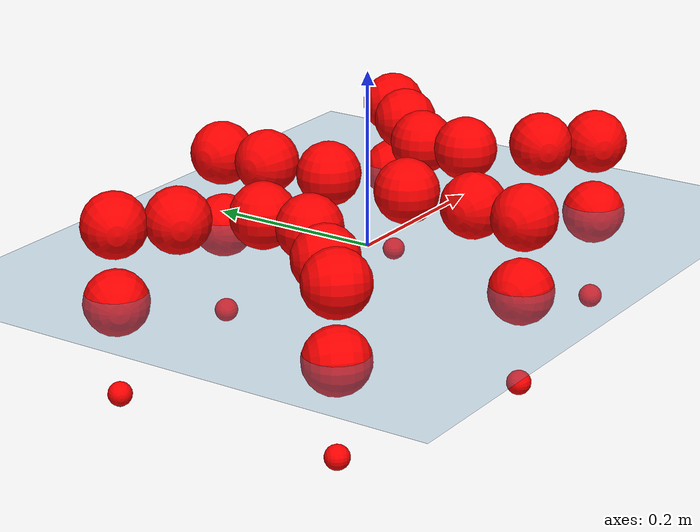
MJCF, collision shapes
<mujoco model="Golem">
  <compiler angle="radian" assetdir="assets" balanceinertia="true" inertiafromgeom="false"/>

  <option timestep="0.005" density="1.2" viscosity="2e-05"/>

  <size nkey="1"/>

  <visual>
    <quality shadowsize="8192"/>
    <map shadowclip="0.5"/>
  </visual>

  <default>
    <default class="/">
      <joint armature="0.01" damping="0.01" frictionloss="0.01"/>
      <geom contype="0" conaffinity="0" group="1" solref="-1000 -80"/>
      <site size="0.01 0.005 0.005" group="5"/>
      <general forcelimited="true" biastype="affine" gainprm="25" biasprm="0 -25 -0.5"/>
      <default class="visual">
        <geom type="mesh" group="2"/>
      </default>
      <default class="collision">
        <geom group="3"/>
      </default>
      <default class="foot">
        <geom size="0.01 0 0" condim="6" group="4" priority="1" solimp="0.015 1 0.01"/>
      </default>
      <default class="reward_collision_sphere">
        <geom group="5" rgba="1 0 0 1"/>
      </default>
    </default>
  </default>

  <asset>
    <texture type="skybox" colorspace="auto" name="//unnamed_texture_0" builtin="gradient" rgb1="0.95 0.95 0.95" rgb2="0.95 0.95 0.95" width="100" height="600"/>
    <texture type="2d" colorspace="auto" name="texplane" builtin="checker" rgb1="0.345 0.575 0.748" rgb2="0.345 0.575 0.748" markrgb="1 1 1" width="512" height="512"/>
    <material name="MatPlane" class="/" texture="texplane" texuniform="true" texrepeat="2 2" specular="0.9"/>
    <mesh name="body" class="/" file="body.stl" scale="0.001 0.001 0.001"/>
    <mesh name="coxa" class="/" file="coxa.stl" scale="0.001 0.001 0.001"/>
    <mesh name="femur" class="/" file="femur.stl" scale="0.001 0.001 0.001"/>
    <mesh name="tibia" class="/" file="tibia.stl" scale="0.001 0.001 0.001"/>
    <mesh name="tarsus" class="/" file="tarsus.stl" scale="0.001 0.001 0.001"/>
  </asset>

  <worldbody>
    <geom name="floor" class="/" size="100 100 0.125" type="plane" group="0" material="MatPlane"/>
    <light name="toplight_shadow" class="/" pos="0 0 5" dir="0.0990148 0.0990148 -0.990148" type="directional" ambient="0.04 0.04 0.04" diffuse="0.55 0.55 0.55" specular="0.12 0.12 0.12"/>
    <light name="toplight_fill" class="/" pos="0 0 5" dir="0.0990148 0.0990148 -0.990148" type="directional" castshadow="false" ambient="0.04 0.04 0.04" diffuse="0.3 0.3 0.3" specular="0.08 0.08 0.08"/>
    <body name="trunk" pos="-4.30672e-05 -0.000147156 0.000735789" quat="1 0.000368144 5.50182e-05 -1.80385e-05">
      <inertial pos="0.00124188 -0.00141458 -0.00103969" quat="0.999997 -0.00169228 0.000834869 -0.00134643" mass="2.84994" diaginertia="0.00954363 0.000801762 0.0199593"/>
      <joint name="//unnamed_joint_0" type="free"/>
      <geom name="//unnamed_geom_1" class="/" pos="0 0 0.0729856" quat="1 0 0 0" type="mesh" rgba="0.9 0.9 0.9 1" mesh="body"/>
      <site name="imu" class="/" pos="0.130148 0.000621482 0.104075" size="0.00906776"/>
      <camera name="track" class="/" pos="0 -1.19956 0" quat="0.707107 0.707107 0 0" mode="trackcom"/>
      <camera name="ego_camera" class="/" pos="0.127419 0 0.11404" quat="-0.5 -0.5 0.5 0.5"/>
      <body name="coxa_RR" pos="-0.174718 -0.0509604 0.0742263" quat="0.382671 -7.61089e-08 5.63976e-06 -0.923885">
        <inertial pos="-0.000510267 0.000419246 0.000486524" quat="0.999999 -1.94763e-05 0.000796231 -0.000896209" mass="0.14882" diaginertia="0.00908987 0.0007851 0.019139"/>
        <joint name="coxa_joint_RR" class="/" pos="0 0 0" axis="0.0027656 0.00821196 -0.999962" range="-3.14281 3.13686" armature="0.0090635" damping="0" frictionloss="0.00903909"/>
        <geom name="//unnamed_geom_2" class="/" type="mesh" rgba="0.2 0.2 0.2 1" mesh="coxa"/>
        <geom name="//unnamed_geom_3" class="reward_collision_sphere" size="0.0362711" pos="-0.0294045 0 0"/>
        <body name="femur_RR" pos="0.0601308 0.000173169 -0.000412391" quat="0.499865 -0.500005 0.500053 0.500077">
          <inertial pos="-0.000759862 -0.000359814 0.000292497" quat="1 -0.000103837 0.000404235 0.000200676" mass="0.146742" diaginertia="0.00909573 0.000758664 0.018788"/>
          <joint name="femur_joint_RR" class="/" pos="0 0 0" axis="-0.000764684 0.00999713 -0.99995" range="-3.14127 3.11832" armature="0.00907828" damping="0" frictionloss="0.00868181"/>
          <geom name="//unnamed_geom_4" class="/" type="mesh" rgba="0.9 0.9 0.9 1" mesh="femur"/>
          <geom name="//unnamed_geom_5" class="reward_collision_sphere" size="0.0362711"/>
          <body name="tibia_RR" pos="0.000454525 -0.0660499 -0.00144404" quat="-4.26983e-05 1 3.12316e-05 2.47282e-05">
            <inertial pos="-0.000444107 -0.00196571 0.00032965" quat="0.99994 -0.0102013 -0.00292549 0.00271249" mass="0.149341" diaginertia="0.00921399 0.000778746 0.0191456"/>
            <joint name="tibia_joint_RR" class="/" pos="0 0 0" axis="-0.00281386 -0.000670738 0.999996" range="-3.13382 3.15379" armature="0.00918902" damping="0" frictionloss="0.00952522"/>
            <geom name="//unnamed_geom_6" class="/" type="mesh" rgba="0.2 0.2 0.2 1" mesh="tibia"/>
            <geom name="//unnamed_geom_7" class="reward_collision_sphere" size="0.0362711"/>
            <body name="tarsus_RR" pos="0.0834684 -0.00211783 -0.00033168" quat="1 -0.000157818 8.8918e-05 3.4687e-05">
              <inertial pos="0.0588936 0.00077835 -0.000392224" quat="0.493753 0.498687 0.501382 0.506098" mass="0.152224" diaginertia="0.0091452 0.000780198 0.0190372"/>
              <joint name="tarsus_joint_RR" class="/" pos="0 0 0" axis="0.000537998 -9.21092e-05 1" range="-3.14466 3.13957" armature="0.00948755" damping="0.0040506" frictionloss="0.00954286"/>
              <geom name="//unnamed_geom_8" class="/" type="mesh" rgba="0.9 0.9 0.9 1" mesh="tarsus"/>
              <geom name="foot_1" class="foot" size="0.00880648" pos="0.109777 0 0" quat="0 -0.707107 0 0.707107"/>
              <geom name="//unnamed_geom_10" class="reward_collision_sphere" size="0.0362711"/>
              <geom name="//unnamed_geom_11" class="reward_collision_sphere" size="0.0136016" pos="0.105366 0 0"/>
              <site name="foot_1" class="foot" pos="0.109777 0 0" quat="0 -0.707107 0 0.707107" size="0.00906776"/>
            </body>
          </body>
        </body>
      </body>
      <body name="coxa_RM" pos="-0.000686639 -0.0803308 0.0736399" quat="0.706432 -0.000441108 -0.000108845 -0.707781">
        <inertial pos="0.000762091 -0.000226329 -0.00106307" quat="1 -0.000424459 -0.000298115 0.000227827" mass="0.150991" diaginertia="0.0091212 0.000789592 0.0191976"/>
        <joint name="coxa_joint_RM" class="/" pos="0 0 0" axis="-7.29641e-05 -0.000285581 -1" range="-3.12839 3.14037" armature="0.00938515" damping="0.0143097" frictionloss="0.00860557"/>
        <geom name="//unnamed_geom_12" class="/" type="mesh" rgba="0.2 0.2 0.2 1" mesh="coxa"/>
        <geom name="//unnamed_geom_13" class="reward_collision_sphere" size="0.0362711" pos="-0.0294045 0 0"/>
        <body name="femur_RM" pos="0.0562118 -0.0023419 0.000969338" quat="0.499939 -0.5 0.500056 0.500005">
          <inertial pos="0.00208448 -0.000168689 -0.000367619" quat="0.999987 -0.00434907 0.00269759 3.26533e-05" mass="0.145556" diaginertia="0.00863643 0.000759932 0.0183356"/>
          <joint name="femur_joint_RM" class="/" pos="0 0 0" axis="-0.000530954 0.0021154 -0.999998" range="-3.14262 3.10058" armature="0.00870337" damping="0.0102463" frictionloss="0.00926657"/>
          <geom name="//unnamed_geom_14" class="/" type="mesh" rgba="0.9 0.9 0.9 1" mesh="femur"/>
          <geom name="//unnamed_geom_15" class="reward_collision_sphere" size="0.0362711"/>
          <body name="tibia_RM" pos="0.000497439 -0.0629535 -0.000558843" quat="1.77707e-05 1 1.58767e-05 -5.02041e-05">
            <inertial pos="6.19111e-05 0.00250254 0.000634375" quat="1 0.00045933 0.000492228 -0.000163175" mass="0.149011" diaginertia="0.00906383 0.000777116 0.0192658"/>
            <joint name="tibia_joint_RM" class="/" pos="0 0 0" axis="3.17073e-05 0.00058257 1" range="-3.1363 3.14025" armature="0.00950977" damping="0.0177849" frictionloss="0.00908851"/>
            <geom name="//unnamed_geom_16" class="/" type="mesh" rgba="0.2 0.2 0.2 1" mesh="tibia"/>
            <geom name="//unnamed_geom_17" class="reward_collision_sphere" size="0.0362711"/>
            <body name="tarsus_RM" pos="0.0836979 -0.00132436 0.000781049" quat="1 1.68045e-05 -3.17726e-05 -4.17243e-06">
              <inertial pos="0.0603417 -0.000213803 -0.000754335" quat="0.500245 0.50028 0.499292 0.500183" mass="0.153677" diaginertia="0.00903885 0.000779182 0.0198331"/>
              <joint name="tarsus_joint_RM" class="/" pos="0 0 0" axis="-0.00521274 -8.085e-05 0.999986" stiffness="0.00192838" range="-3.158 3.1126" armature="0.00901248" damping="0.00806346" frictionloss="0.0086448"/>
              <geom name="//unnamed_geom_18" class="/" type="mesh" rgba="0.9 0.9 0.9 1" mesh="tarsus"/>
              <geom name="foot_2" class="foot" size="0.00919724" pos="0.109777 0 0" quat="0 -0.707107 0 0.707107"/>
              <geom name="//unnamed_geom_20" class="reward_collision_sphere" size="0.0362711"/>
              <geom name="//unnamed_geom_21" class="reward_collision_sphere" size="0.0136016" pos="0.105366 0 0"/>
              <site name="foot_2" class="foot" pos="0.109777 0 0" quat="0 -0.707107 0 0.707107" size="0.00906776"/>
            </body>
          </body>
        </body>
      </body>
      <body name="coxa_RF" pos="0.175748 -0.0512179 0.0751358" quat="0.923795 -2.64496e-05 0.000339431 -0.382887">
        <inertial pos="0.000773466 -0.0020392 0.00116407" quat="0.999954 0.000996463 -0.00946935 -0.000872436" mass="0.145929" diaginertia="0.00909664 0.000770951 0.0191262"/>
        <joint name="coxa_joint_RF" class="/" pos="0 0 0" axis="0.0011929 0.00220336 -0.999997" range="-3.09717 3.1275" armature="0.00848135" damping="0" frictionloss="0.00911607"/>
        <geom name="//unnamed_geom_22" class="/" type="mesh" rgba="0.2 0.2 0.2 1" mesh="coxa"/>
        <geom name="//unnamed_geom_23" class="reward_collision_sphere" size="0.0362711" pos="-0.0294045 0 0"/>
        <body name="femur_RF" pos="0.0594623 0.000899962 -0.000577254" quat="0.499943 -0.500049 0.500011 0.499997">
          <inertial pos="-0.000601723 0.00180937 0.000318199" quat="0.999989 -0.0028341 0.00324965 -0.00169195" mass="0.14968" diaginertia="0.00938535 0.000794445 0.0200703"/>
          <joint name="femur_joint_RF" class="/" pos="0 0 0" axis="0.000949137 -0.0013858 -0.999999" range="-3.14955 3.1518" armature="0.0090969" damping="0.00919267" frictionloss="0.00938508"/>
          <geom name="//unnamed_geom_24" class="/" type="mesh" rgba="0.9 0.9 0.9 1" mesh="femur"/>
          <geom name="//unnamed_geom_25" class="reward_collision_sphere" size="0.0362711"/>
          <body name="tibia_RF" pos="0.000778711 -0.064935 -0.00061123" quat="-2.19015e-05 1 0.000154259 -9.66465e-05">
            <inertial pos="0.000325902 0.000318543 -0.00232845" quat="0.99997 0.00471109 -0.00583132 0.00208824" mass="0.151921" diaginertia="0.0092391 0.000767337 0.0197842"/>
            <joint name="tibia_joint_RF" class="/" pos="0 0 0" axis="0.00548352 -0.0012784 0.999984" stiffness="0.00102172" range="-3.13869 3.12956" armature="0.0088968" damping="0.0126729" frictionloss="0.00891898"/>
            <geom name="//unnamed_geom_26" class="/" type="mesh" rgba="0.2 0.2 0.2 1" mesh="tibia"/>
            <geom name="//unnamed_geom_27" class="reward_collision_sphere" size="0.0362711"/>
            <body name="tarsus_RF" pos="0.0866617 0.0012373 -0.00116187" quat="1 0.000120447 0.000290269 0.000307681">
              <inertial pos="0.059421 -0.000282844 -0.000836305" quat="0.499944 0.499985 0.500097 0.499974" mass="0.149057" diaginertia="0.00914148 0.000757835 0.0187223"/>
              <joint name="tarsus_joint_RF" class="/" pos="0 0 0" axis="-0.0013316 0.000316302 0.999999" stiffness="0.023771" range="-3.11969 3.13671" armature="0.00878886" damping="0" frictionloss="0.00898089"/>
              <geom name="//unnamed_geom_28" class="/" type="mesh" rgba="0.9 0.9 0.9 1" mesh="tarsus"/>
              <geom name="foot_3" class="foot" size="0.00936132" pos="0.109777 0 0" quat="0 -0.707107 0 0.707107"/>
              <geom name="//unnamed_geom_30" class="reward_collision_sphere" size="0.0362711"/>
              <geom name="//unnamed_geom_31" class="reward_collision_sphere" size="0.0136016" pos="0.105366 0 0"/>
              <site name="foot_3" class="foot" pos="0.109777 0 0" quat="0 -0.707107 0 0.707107" size="0.00906776"/>
            </body>
          </body>
        </body>
      </body>
      <body name="coxa_LR" pos="-0.172781 0.0517562 0.074895" quat="0.382439 0.000149705 -0.000195211 0.923981">
        <inertial pos="-0.000423682 -0.00143364 -0.000143633" quat="0.999991 0.00274109 -0.00333984 -0.000422187" mass="0.147769" diaginertia="0.00923598 0.000763215 0.0185681"/>
        <joint name="coxa_joint_LR" class="/" pos="0 0 0" axis="-0.000292946 -0.00273219 -0.999996" range="-3.13249 3.12262" armature="0.00862577" damping="0.0119799" frictionloss="0.00925798"/>
        <geom name="//unnamed_geom_32" class="/" type="mesh" rgba="0.2 0.2 0.2 1" mesh="coxa"/>
        <geom name="//unnamed_geom_33" class="reward_collision_sphere" size="0.0362711" pos="-0.0294045 0 0"/>
        <body name="femur_LR" pos="0.0600382 -0.00314944 -0.000149625" quat="0.500228 -0.500488 0.499586 0.499698">
          <inertial pos="0.000263132 -0.00258223 2.19128e-05" quat="1 -0.000465048 -0.000123529 0.000204371" mass="0.149907" diaginertia="0.00882137 0.000781846 0.0187757"/>
          <joint name="femur_joint_LR" class="/" pos="0 0 0" axis="-0.0016555 -0.00148501 0.999998" stiffness="0.000149407" range="-3.10519 3.13376" armature="0.00886272" damping="0" frictionloss="0.0091029"/>
          <geom name="//unnamed_geom_34" class="/" type="mesh" rgba="0.9 0.9 0.9 1" mesh="femur"/>
          <geom name="//unnamed_geom_35" class="reward_collision_sphere" size="0.0362711"/>
          <body name="tibia_LR" pos="0.00217382 -0.066303 -0.00368313" quat="-7.16457e-05 1 -0.000119404 -0.000104866">
            <inertial pos="-0.000503172 -0.00107333 0.000812774" quat="0.999969 0.00350504 -0.0058794 0.00376839" mass="0.148636" diaginertia="0.0088521 0.00077227 0.0191391"/>
            <joint name="tibia_joint_LR" class="/" pos="0 0 0" axis="0.00328683 -0.000108286 -0.999995" range="-3.14746 3.17603" armature="0.00860786" damping="0" frictionloss="0.00911489"/>
            <geom name="//unnamed_geom_36" class="/" type="mesh" rgba="0.2 0.2 0.2 1" mesh="tibia"/>
            <geom name="//unnamed_geom_37" class="reward_collision_sphere" size="0.0362711"/>
            <body name="tarsus_LR" pos="0.0864019 0.000642931 -0.0013692" quat="1 -5.89066e-05 0.000207155 -0.000157076">
              <inertial pos="0.061555 -0.00177734 -0.00159025" quat="0.498806 0.502515 0.501996 0.49666" mass="0.148817" diaginertia="0.00891352 0.0007789 0.0188168"/>
              <joint name="tarsus_joint_LR" class="/" pos="0 0 0" axis="0.00219371 -0.0123367 -0.999921" range="-3.12032 3.14134" armature="0.00876433" damping="0" frictionloss="0.00913381"/>
              <geom name="//unnamed_geom_38" class="/" type="mesh" rgba="0.9 0.9 0.9 1" mesh="tarsus"/>
              <geom name="foot_4" class="foot" size="0.0098835" pos="0.109777 0 0" quat="0.707107 0 -0.707107 0"/>
              <geom name="//unnamed_geom_40" class="reward_collision_sphere" size="0.0362711"/>
              <geom name="//unnamed_geom_41" class="reward_collision_sphere" size="0.0136016" pos="0.105366 0 0"/>
              <site name="foot_4" class="foot" pos="0.109777 0 0" quat="0.707107 0 -0.707107 0" size="0.00906776"/>
            </body>
          </body>
        </body>
      </body>
      <body name="coxa_LM" pos="-0.00322953 0.0791192 0.0748903" quat="0.70732 -9.93753e-05 -6.19713e-05 0.706894">
        <inertial pos="0.00117885 -0.000650974 -0.000741433" quat="0.999968 0.00282815 0.00163617 -0.00732991" mass="0.151083" diaginertia="0.00918807 0.000799709 0.0198912"/>
        <joint name="coxa_joint_LM" class="/" pos="0 0 0" axis="-0.0119932 0.00296248 -0.999924" range="-3.13852 3.12592" armature="0.0086179" damping="0.00450551" frictionloss="0.00903995"/>
        <geom name="//unnamed_geom_42" class="/" type="mesh" rgba="0.2 0.2 0.2 1" mesh="coxa"/>
        <geom name="//unnamed_geom_43" class="reward_collision_sphere" size="0.0362711" pos="-0.0294045 0 0"/>
        <body name="femur_LM" pos="0.0530435 0.00240477 -0.000658861" quat="0.499998 -0.499991 0.50001 0.500001">
          <inertial pos="0.000416544 7.74245e-06 0.000916526" quat="0.999991 -0.000719411 -0.00202127 0.00367042" mass="0.149118" diaginertia="0.00893941 0.000806225 0.0197451"/>
          <joint name="femur_joint_LM" class="/" pos="0 0 0" axis="0.00199028 -0.000910013 0.999998" range="-3.15799 3.15038" armature="0.00912416" damping="0" frictionloss="0.00887262"/>
          <geom name="//unnamed_geom_44" class="/" type="mesh" rgba="0.9 0.9 0.9 1" mesh="femur"/>
          <geom name="//unnamed_geom_45" class="reward_collision_sphere" size="0.0362711"/>
          <body name="tibia_LM" pos="0.000514284 -0.0610631 0.00187974" quat="-0.000124979 1 -7.8365e-05 -0.000598794">
            <inertial pos="-0.000123883 -0.000939914 -0.00152356" quat="0.999961 0.00380096 0.00765322 0.00228011" mass="0.148137" diaginertia="0.00900769 0.000797074 0.0194665"/>
            <joint name="tibia_joint_LM" class="/" pos="0 0 0" axis="-0.000104601 -0.000117056 -1" range="-3.13892 3.14001" armature="0.00907015" damping="0.000137445" frictionloss="0.00854238"/>
            <geom name="//unnamed_geom_46" class="/" type="mesh" rgba="0.2 0.2 0.2 1" mesh="tibia"/>
            <geom name="//unnamed_geom_47" class="reward_collision_sphere" size="0.0362711"/>
            <body name="tarsus_LM" pos="0.0869483 -0.000727841 -0.000596676" quat="1 -0.000202484 4.56238e-05 -0.000617384">
              <inertial pos="0.0592585 -0.000536989 -0.000429077" quat="0.504459 0.503955 0.498051 0.493452" mass="0.151161" diaginertia="0.00925349 0.000780904 0.0191724"/>
              <joint name="tarsus_joint_LM" class="/" pos="0 0 0" axis="-0.00614842 0.00655444 -0.99996" range="-3.128 3.12801" armature="0.00889572" damping="0" frictionloss="0.009858"/>
              <geom name="//unnamed_geom_48" class="/" type="mesh" rgba="0.9 0.9 0.9 1" mesh="tarsus"/>
              <geom name="foot_5" class="foot" size="0.0089806" pos="0.109777 0 0" quat="0.707107 0 -0.707107 0"/>
              <geom name="//unnamed_geom_50" class="reward_collision_sphere" size="0.0362711"/>
              <geom name="//unnamed_geom_51" class="reward_collision_sphere" size="0.0136016" pos="0.105366 0 0"/>
              <site name="foot_5" class="foot" pos="0.109777 0 0" quat="0.707107 0 -0.707107 0" size="0.00906776"/>
            </body>
          </body>
        </body>
      </body>
      <body name="coxa_LF" pos="0.176069 0.0493027 0.0723246" quat="0.923911 -5.81186e-05 6.63467e-05 0.382608">
        <inertial pos="-0.000254214 7.86598e-05 0.00165079" quat="0.999992 -0.00364751 3.66428e-06 -0.00134347" mass="0.148548" diaginertia="0.00881407 0.000791822 0.0191729"/>
        <joint name="coxa_joint_LF" class="/" pos="0 0 0" axis="-0.00872674 0.00690979 -0.999938" range="-3.13926 3.13491" armature="0.00852315" damping="0.00334204" frictionloss="0.0101532"/>
        <geom name="//unnamed_geom_52" class="/" type="mesh" rgba="0.2 0.2 0.2 1" mesh="coxa"/>
        <geom name="//unnamed_geom_53" class="reward_collision_sphere" size="0.0362711" pos="-0.0294045 0 0"/>
        <body name="femur_LF" pos="0.0584359 0.00060348 0.000386766" quat="0.500001 -0.49997 0.500025 0.500003">
          <inertial pos="-0.00238563 0.00069531 0.00238337" quat="0.999996 0.000806714 -0.00252863 0.000369674" mass="0.151004" diaginertia="0.00928844 0.00078274 0.0193491"/>
          <joint name="femur_joint_LF" class="/" pos="0 0 0" axis="0.00417185 0.000142008 0.999991" range="-3.13531 3.13103" armature="0.00908572" damping="0" frictionloss="0.00876195"/>
          <geom name="//unnamed_geom_54" class="/" type="mesh" rgba="0.9 0.9 0.9 1" mesh="femur"/>
          <geom name="//unnamed_geom_55" class="reward_collision_sphere" size="0.0362711"/>
          <body name="tibia_LF" pos="-0.000635527 -0.0641633 0.000823994" quat="9.34479e-05 1 -8.14869e-05 -5.5899e-05">
            <inertial pos="0.000874206 -0.00219827 -0.000480651" quat="1 -0.000270472 6.9281e-05 6.62595e-05" mass="0.142805" diaginertia="0.00852786 0.000750916 0.0184649"/>
            <joint name="tibia_joint_LF" class="/" pos="0 0 0" axis="0.00369245 -0.00462602 -0.999982" stiffness="0.000254822" range="-3.13378 3.14691" armature="0.00929297" damping="0" frictionloss="0.00899314"/>
            <geom name="//unnamed_geom_56" class="/" type="mesh" rgba="0.2 0.2 0.2 1" mesh="tibia"/>
            <geom name="//unnamed_geom_57" class="reward_collision_sphere" size="0.0362711"/>
            <body name="tarsus_LF" pos="0.0845751 0.000942808 0.0015909" quat="1 1.55471e-06 1.19177e-06 -1.82511e-06">
              <inertial pos="0.0590042 0.000215169 -0.000121958" quat="0.500032 0.499525 0.500442 0.500001" mass="0.143086" diaginertia="0.00867194 0.000742722 0.0185166"/>
              <joint name="tarsus_joint_LF" class="/" pos="0 0 0" axis="-0.00351438 0.00322093 -0.999989" range="-3.14678 3.13729" armature="0.00958172" damping="0.0138963" frictionloss="0.00804331"/>
              <geom name="//unnamed_geom_58" class="/" type="mesh" rgba="0.9 0.9 0.9 1" mesh="tarsus"/>
              <geom name="foot_6" class="foot" size="0.00866659" pos="0.109777 0 0" quat="0.707107 0 -0.707107 0"/>
              <geom name="//unnamed_geom_60" class="reward_collision_sphere" size="0.0362711"/>
              <geom name="//unnamed_geom_61" class="reward_collision_sphere" size="0.0136016" pos="0.105366 0 0"/>
              <site name="foot_6" class="foot" pos="0.109777 0 0" quat="0.707107 0 -0.707107 0" size="0.00906776"/>
            </body>
          </body>
        </body>
      </body>
    </body>
  </worldbody>

  <contact>
    <pair class="/" geom1="floor" geom2="foot_1" name="//unnamed_contact_0"/>
    <pair class="/" geom1="floor" geom2="foot_2" name="//unnamed_contact_1"/>
    <pair class="/" geom1="floor" geom2="foot_3" name="//unnamed_contact_2"/>
    <pair class="/" geom1="floor" geom2="foot_4" name="//unnamed_contact_3"/>
    <pair class="/" geom1="floor" geom2="foot_5" name="//unnamed_contact_4"/>
    <pair class="/" geom1="floor" geom2="foot_6" name="//unnamed_contact_5"/>
  </contact>

  <actuator>
    <general name="coxa_joint_RR" class="/" joint="coxa_joint_RR" forcerange="-6.8757 6.8757" gainprm="22.3428" biasprm="0 -22.3428 -0.488008"/>
    <general name="femur_joint_RR" class="/" joint="femur_joint_RR" forcerange="-6.48875 6.48875" gainprm="22.3428" biasprm="0 -22.3428 -0.488008"/>
    <general name="tibia_joint_RR" class="/" joint="tibia_joint_RR" forcerange="-6.85032 6.85032" gainprm="22.3428" biasprm="0 -22.3428 -0.488008"/>
    <general name="tarsus_joint_RR" class="/" joint="tarsus_joint_RR" forcerange="-7.02698 7.02698" gainprm="22.3428" biasprm="0 -22.3428 -0.488008"/>
    <general name="coxa_joint_RM" class="/" joint="coxa_joint_RM" forcerange="-6.74681 6.74681" gainprm="22.3428" biasprm="0 -22.3428 -0.488008"/>
    <general name="femur_joint_RM" class="/" joint="femur_joint_RM" forcerange="-6.63743 6.63743" gainprm="22.3428" biasprm="0 -22.3428 -0.488008"/>
    <general name="tibia_joint_RM" class="/" joint="tibia_joint_RM" forcerange="-6.58735 6.58735" gainprm="22.3428" biasprm="0 -22.3428 -0.488008"/>
    <general name="tarsus_joint_RM" class="/" joint="tarsus_joint_RM" forcerange="-7.15724 7.15724" gainprm="22.3428" biasprm="0 -22.3428 -0.488008"/>
    <general name="coxa_joint_RF" class="/" joint="coxa_joint_RF" forcerange="-6.50939 6.50939" gainprm="22.3428" biasprm="0 -22.3428 -0.488008"/>
    <general name="femur_joint_RF" class="/" joint="femur_joint_RF" forcerange="-6.12245 6.12245" gainprm="22.3428" biasprm="0 -22.3428 -0.488008"/>
    <general name="tibia_joint_RF" class="/" joint="tibia_joint_RF" forcerange="-6.65854 6.65854" gainprm="22.3428" biasprm="0 -22.3428 -0.488008"/>
    <general name="tarsus_joint_RF" class="/" joint="tarsus_joint_RF" forcerange="-6.51042 6.51042" gainprm="22.3428" biasprm="0 -22.3428 -0.488008"/>
    <general name="coxa_joint_LR" class="/" joint="coxa_joint_LR" forcerange="-6.65901 6.65901" gainprm="22.3428" biasprm="0 -22.3428 -0.488008"/>
    <general name="femur_joint_LR" class="/" joint="femur_joint_LR" forcerange="-6.64342 6.64342" gainprm="22.3428" biasprm="0 -22.3428 -0.488008"/>
    <general name="tibia_joint_LR" class="/" joint="tibia_joint_LR" forcerange="-6.62769 6.62769" gainprm="22.3428" biasprm="0 -22.3428 -0.488008"/>
    <general name="tarsus_joint_LR" class="/" joint="tarsus_joint_LR" forcerange="-6.65134 6.65134" gainprm="22.3428" biasprm="0 -22.3428 -0.488008"/>
    <general name="coxa_joint_LM" class="/" joint="coxa_joint_LM" forcerange="-6.64802 6.64802" gainprm="22.3428" biasprm="0 -22.3428 -0.488008"/>
    <general name="femur_joint_LM" class="/" joint="femur_joint_LM" forcerange="-6.58602 6.58602" gainprm="22.3428" biasprm="0 -22.3428 -0.488008"/>
    <general name="tibia_joint_LM" class="/" joint="tibia_joint_LM" forcerange="-6.86958 6.86958" gainprm="22.3428" biasprm="0 -22.3428 -0.488008"/>
    <general name="tarsus_joint_LM" class="/" joint="tarsus_joint_LM" forcerange="-6.71078 6.71078" gainprm="22.3428" biasprm="0 -22.3428 -0.488008"/>
    <general name="coxa_joint_LF" class="/" joint="coxa_joint_LF" forcerange="-6.23028 6.23028" gainprm="22.3428" biasprm="0 -22.3428 -0.488008"/>
    <general name="femur_joint_LF" class="/" joint="femur_joint_LF" forcerange="-6.6539 6.6539" gainprm="22.3428" biasprm="0 -22.3428 -0.488008"/>
    <general name="tibia_joint_LF" class="/" joint="tibia_joint_LF" forcerange="-6.57703 6.57703" gainprm="22.3428" biasprm="0 -22.3428 -0.488008"/>
    <general name="tarsus_joint_LF" class="/" joint="tarsus_joint_LF" forcerange="-6.87439 6.87439" gainprm="22.3428" biasprm="0 -22.3428 -0.488008"/>
  </actuator>

  <sensor>
    <gyro site="imu" name="imu_angular_velocity"/>
    <velocimeter site="imu" name="imu_linear_velocity"/>
    <framelinvel objtype="site" objname="foot_1" name="foot_1_global_linear_velocity"/>
    <framelinvel objtype="site" objname="foot_2" name="foot_2_global_linear_velocity"/>
    <framelinvel objtype="site" objname="foot_3" name="foot_3_global_linear_velocity"/>
    <framelinvel objtype="site" objname="foot_4" name="foot_4_global_linear_velocity"/>
    <framelinvel objtype="site" objname="foot_5" name="foot_5_global_linear_velocity"/>
    <framelinvel objtype="site" objname="foot_6" name="foot_6_global_linear_velocity"/>
  </sensor>

  <keyframe>
    <key name="home" qpos="0 0 0.1457 1 0 0 0 0 0 0 0 0 0 0 0 0 0 0 0 0 0 0 0 0 0 0 0 0 0 0 0"/>
  </keyframe>
</mujoco>
